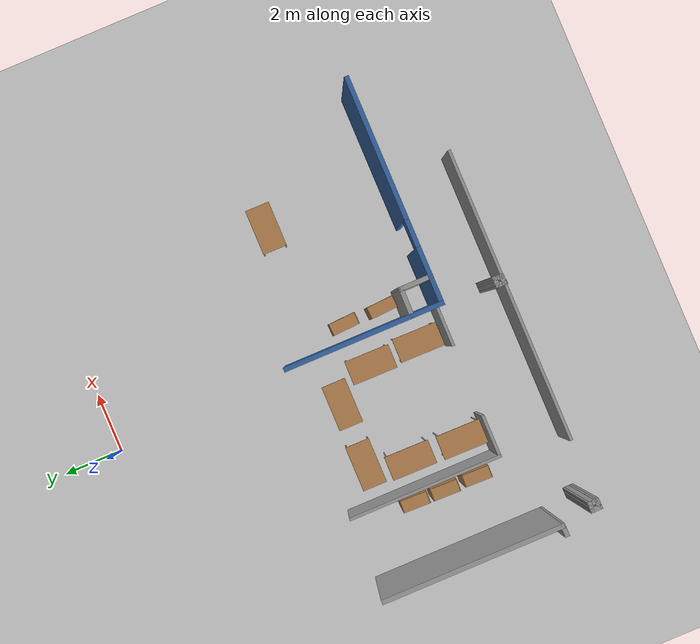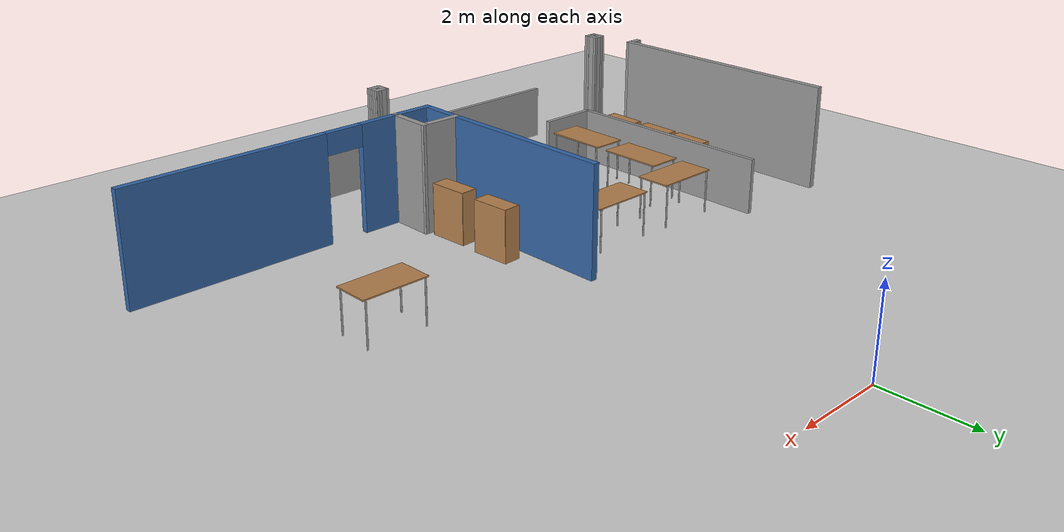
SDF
<sdf version="1.7">
 <world name="default">
  <model name="ground_plane">
   <static>1</static>
   <link name="link">
    <collision name="collision">
     <geometry><plane><normal>0 0 1</normal><size>100 100</size></plane></geometry>
     <surface>
      <contact><collide_bitmask>65535</collide_bitmask></contact>
      <friction><ode><mu>100</mu><mu2>50</mu2></ode></friction>
     </surface>
    </collision>
    <visual name="visual">
     <cast_shadows>0</cast_shadows>
     <geometry><plane><normal>0 0 1</normal><size>100 100</size></plane></geometry>
     <material>
      <script><uri>file://media/materials/scripts/gazebo.material</uri><name>Gazebo/Grey</name></script>
     </material>
    </visual>
   </link>
  </model>
  <model name="XXXXX_office_centered">
   <pose>8.46852 -9.33941 0 0 -0 0</pose>
   <link name="Wall_100">
    <collision name="Wall_100_Collision">
     <geometry><box><size>0.341623 0.15 2.5</size></box></geometry>
     <pose>0 0 1.25 0 -0 0</pose>
    </collision>
    <visual name="Wall_100_Visual">
     <pose>0 0 1.25 0 -0 0</pose>
     <geometry><box><size>0.341623 0.15 2.5</size></box></geometry>
     <material>
      <script><uri>file://media/materials/scripts/gazebo.material</uri><name>Gazebo/Grey</name></script>
      <ambient>1 1 1 1</ambient>
     </material>
     <meta><layer>0</layer></meta>
    </visual>
    <pose>-8.09905 -3.91466 0 0 -0 3.11175</pose>
   </link>
   <link name="Wall_132">
    <collision name="Wall_132_Collision">
     <geometry><box><size>5.2 0.1 1.3</size></box></geometry>
     <pose>0 0 0.65 0 -0 0</pose>
    </collision>
    <visual name="Wall_132_Visual">
     <pose>0 0 0.65 0 -0 0</pose>
     <geometry><box><size>5.2 0.1 1.3</size></box></geometry>
     <material>
      <script><uri>file://media/materials/scripts/gazebo.material</uri><name>Gazebo/Grey</name></script>
      <ambient>1 1 1 1</ambient>
     </material>
     <meta><layer>0</layer></meta>
    </visual>
    <pose>-13.2287 0.610146 0 0 -0 -1.5708</pose>
   </link>
   <link name="Wall_133">
    <collision name="Wall_133_Collision">
     <geometry><box><size>1.45 0.1 1.3</size></box></geometry>
     <pose>0 0 0.65 0 -0 0</pose>
    </collision>
    <visual name="Wall_133_Visual">
     <pose>0 0 0.65 0 -0 0</pose>
     <geometry><box><size>1.45 0.1 1.3</size></box></geometry>
     <material>
      <script><uri>file://media/materials/scripts/gazebo.material</uri><name>Gazebo/Grey</name></script>
      <ambient>1 1 1 1</ambient>
     </material>
     <meta><layer>0</layer></meta>
    </visual>
    <pose>-12.5537 -1.93985 0 0 -0 0</pose>
   </link>
   <link name="Wall_135">
    <collision name="Wall_135_Collision">
     <geometry><box><size>1.44963 0.1 1.3</size></box></geometry>
     <pose>0 0 0.65 0 -0 0</pose>
    </collision>
    <visual name="Wall_135_Visual">
     <pose>0 0 0.65 0 -0 0</pose>
     <geometry><box><size>1.44963 0.1 1.3</size></box></geometry>
     <material>
      <script><uri>file://media/materials/scripts/gazebo.material</uri><name>Gazebo/Grey</name></script>
      <ambient>1 1 1 1</ambient>
     </material>
     <meta><layer>0</layer></meta>
    </visual>
    <pose>-8.72873 -1.94485 0 0 -0 3.14159</pose>
   </link>
   <link name="Wall_167">
    <collision name="Wall_167_Collision">
     <geometry><box><size>9.95 0.1 1.3</size></box></geometry>
     <pose>0 0 0.65 0 -0 0</pose>
    </collision>
    <visual name="Wall_167_Visual">
     <pose>0 0 0.65 0 -0 0</pose>
     <geometry><box><size>9.95 0.1 1.3</size></box></geometry>
     <material>
      <script><uri>file://media/materials/scripts/gazebo.material</uri><name>Gazebo/Grey</name></script>
      <ambient>1 1 1 1</ambient>
     </material>
     <meta><layer>0</layer></meta>
    </visual>
    <pose>-8.67673 -4.21685 0 0 -0 3.14159</pose>
   </link>
   <link name="Wall_34">
    <collision name="Wall_34_Collision">
     <geometry><box><size>0.421671 0.15 2.5</size></box></geometry>
     <pose>0 0 1.25 0 -0 0</pose>
    </collision>
    <visual name="Wall_34_Visual">
     <pose>0 0 1.25 0 -0 0</pose>
     <geometry><box><size>0.421671 0.15 2.5</size></box></geometry>
     <material>
      <script><uri>file://media/materials/scripts/gazebo.material</uri><name>Gazebo/Grey</name></script>
      <ambient>1 1 1 1</ambient>
     </material>
     <meta><layer>0</layer></meta>
    </visual>
    <pose>-15.7892 -2.69755 0 0 -0 0.019104</pose>
   </link>
   <link name="Wall_35">
    <collision name="Wall_35_Collision">
     <geometry><box><size>6 0.15 2.5</size></box></geometry>
     <pose>0 0 1.25 0 -0 0</pose>
    </collision>
    <visual name="Wall_35_Visual">
     <pose>0 0 1.25 0 -0 0</pose>
     <geometry><box><size>6 0.15 2.5</size></box></geometry>
     <material>
      <script><uri>file://media/materials/scripts/gazebo.material</uri><name>Gazebo/Grey</name></script>
      <ambient>1 1 1 1</ambient>
     </material>
     <meta><layer>0</layer></meta>
    </visual>
    <pose>-15.6534 0.230043 0 0 -0 1.5708</pose>
   </link>
   <link name="Wall_41">
    <collision name="Wall_41_Collision">
     <geometry><box><size>5.25 0.15 2.5</size></box></geometry>
     <pose>0 0 1.25 0 -0 0</pose>
    </collision>
    <visual name="Wall_41_Visual">
     <pose>0 0 1.25 0 -0 0</pose>
     <geometry><box><size>5.25 0.15 2.5</size></box></geometry>
     <material>
      <script><uri>file://media/materials/scripts/gazebo.material</uri><name>Gazebo/Grey</name></script>
      <ambient>0.203922 0.396078 0.643137 1</ambient>
     </material>
     <meta><layer>0</layer></meta>
    </visual>
    <pose>-8.05354 0.605094 0 0 -0 -1.57087</pose>
   </link>
   <link name="Wall_42">
    <pose>-4.37854 -1.94491 0 0 -0 -1.4e-05</pose>
    <visual name="Wall_42_Visual_0">
     <pose>-2.79066 0 1.25 0 -0 0</pose>
     <geometry><box><size>1.91868 0.15 2.5</size></box></geometry>
     <material>
      <script><uri>file://media/materials/scripts/gazebo.material</uri><name>Gazebo/Grey</name></script>
      <ambient>0.203922 0.396078 0.643137 1</ambient>
     </material>
     <meta><layer>0</layer></meta>
    </visual>
    <collision name="Wall_42_Collision_0">
     <geometry><box><size>1.91868 0.15 2.5</size></box></geometry>
     <pose>-2.79066 0 1.25 0 -0 0</pose>
    </collision>
    <visual name="Wall_42_Visual_1">
     <pose>1.40934 0 1.25 0 -0 0</pose>
     <geometry><box><size>4.68131 0.15 2.5</size></box></geometry>
     <material>
      <script><uri>file://media/materials/scripts/gazebo.material</uri><name>Gazebo/Grey</name></script>
      <ambient>0.203922 0.396078 0.643137 1</ambient>
     </material>
     <meta><layer>0</layer></meta>
    </visual>
    <collision name="Wall_42_Collision_1">
     <geometry><box><size>4.68131 0.15 2.5</size></box></geometry>
     <pose>1.40934 0 1.25 0 -0 0</pose>
    </collision>
    <visual name="Wall_42_Visual_2">
     <pose>-1.38132 0 2.25 0 -0 0</pose>
     <geometry><box><size>0.9 0.15 0.5</size></box></geometry>
     <material>
      <script><uri>file://media/materials/scripts/gazebo.material</uri><name>Gazebo/Grey</name></script>
      <ambient>0.203922 0.396078 0.643137 1</ambient>
     </material>
     <meta><layer>0</layer></meta>
    </visual>
    <collision name="Wall_42_Collision_2">
     <geometry><box><size>0.9 0.15 0.5</size></box></geometry>
     <pose>-1.38132 0 2.25 0 -0 0</pose>
    </collision>
   </link>
   <link name="Wall_51">
    <collision name="Wall_51_Collision">
     <geometry><box><size>1.12149 0.15 2.5</size></box></geometry>
     <pose>0 0 1.25 0 -0 0</pose>
    </collision>
    <visual name="Wall_51_Visual">
     <pose>0 0 1.25 0 -0 0</pose>
     <geometry><box><size>1.12149 0.15 2.5</size></box></geometry>
     <material>
      <script><uri>file://media/materials/scripts/gazebo.material</uri><name>Gazebo/Grey</name></script>
      <ambient>1 1 1 1</ambient>
     </material>
     <meta><layer>0</layer></meta>
    </visual>
    <pose>-7.1714 -1.46267 0 0 -0 1.5708</pose>
   </link>
   <link name="Wall_52">
    <collision name="Wall_52_Collision">
     <geometry><box><size>1.01742 0.15 2.5</size></box></geometry>
     <pose>0 0 1.25 0 -0 0</pose>
    </collision>
    <visual name="Wall_52_Visual">
     <pose>0 0 1.25 0 -0 0</pose>
     <geometry><box><size>1.01742 0.15 2.5</size></box></geometry>
     <material>
      <script><uri>file://media/materials/scripts/gazebo.material</uri><name>Gazebo/Grey</name></script>
      <ambient>1 1 1 1</ambient>
     </material>
     <meta><layer>0</layer></meta>
    </visual>
    <pose>-7.6051 -0.971145 0 0 -0 3.12826</pose>
   </link>
   <link name="Wall_92">
    <collision name="Wall_92_Collision">
     <geometry><box><size>0.382989 0.15 2.5</size></box></geometry>
     <pose>0 0 1.25 0 -0 0</pose>
    </collision>
    <visual name="Wall_92_Visual">
     <pose>0 0 1.25 0 -0 0</pose>
     <geometry><box><size>0.382989 0.15 2.5</size></box></geometry>
     <material>
      <script><uri>file://media/materials/scripts/gazebo.material</uri><name>Gazebo/Grey</name></script>
      <ambient>1 1 1 1</ambient>
     </material>
     <meta><layer>0</layer></meta>
    </visual>
    <pose>-15.559 -3.82104 0 0 -0 1.58307</pose>
   </link>
   <link name="Wall_93">
    <collision name="Wall_93_Collision">
     <geometry><box><size>0.358695 0.15 2.5</size></box></geometry>
     <pose>0 0 1.25 0 -0 0</pose>
    </collision>
    <visual name="Wall_93_Visual">
     <pose>0 0 1.25 0 -0 0</pose>
     <geometry><box><size>0.358695 0.15 2.5</size></box></geometry>
     <material>
      <script><uri>file://media/materials/scripts/gazebo.material</uri><name>Gazebo/Grey</name></script>
      <ambient>1 1 1 1</ambient>
     </material>
     <meta><layer>0</layer></meta>
    </visual>
    <pose>-15.4561 -3.70383 0 0 -0 0.006849</pose>
   </link>
   <link name="Wall_94">
    <collision name="Wall_94_Collision">
     <geometry><box><size>0.37729 0.15 2.5</size></box></geometry>
     <pose>0 0 1.25 0 -0 0</pose>
    </collision>
    <visual name="Wall_94_Visual">
     <pose>0 0 1.25 0 -0 0</pose>
     <geometry><box><size>0.37729 0.15 2.5</size></box></geometry>
     <material>
      <script><uri>file://media/materials/scripts/gazebo.material</uri><name>Gazebo/Grey</name></script>
      <ambient>1 1 1 1</ambient>
     </material>
     <meta><layer>0</layer></meta>
    </visual>
    <pose>-15.3503 -3.81675 0 0 -0 -1.55822</pose>
   </link>
   <link name="Wall_95">
    <collision name="Wall_95_Collision">
     <geometry><box><size>0.341585 0.15 2.5</size></box></geometry>
     <pose>0 0 1.25 0 -0 0</pose>
    </collision>
    <visual name="Wall_95_Visual">
     <pose>0 0 1.25 0 -0 0</pose>
     <geometry><box><size>0.341585 0.15 2.5</size></box></geometry>
     <material>
      <script><uri>file://media/materials/scripts/gazebo.material</uri><name>Gazebo/Grey</name></script>
      <ambient>1 1 1 1</ambient>
     </material>
     <meta><layer>0</layer></meta>
    </visual>
    <pose>-15.4446 -3.92824 0 0 -0 3.11921</pose>
   </link>
   <link name="Wall_97">
    <collision name="Wall_97_Collision">
     <geometry><box><size>0.380131 0.15 2.5</size></box></geometry>
     <pose>0 0 1.25 0 -0 0</pose>
    </collision>
    <visual name="Wall_97_Visual">
     <pose>0 0 1.25 0 -0 0</pose>
     <geometry><box><size>0.380131 0.15 2.5</size></box></geometry>
     <material>
      <script><uri>file://media/materials/scripts/gazebo.material</uri><name>Gazebo/Grey</name></script>
      <ambient>1 1 1 1</ambient>
     </material>
     <meta><layer>0</layer></meta>
    </visual>
    <pose>-8.21054 -3.81818 0 0 -0 1.5708</pose>
   </link>
   <link name="Wall_98">
    <collision name="Wall_98_Collision">
     <geometry><box><size>0.361568 0.15 2.5</size></box></geometry>
     <pose>0 0 1.25 0 -0 0</pose>
    </collision>
    <visual name="Wall_98_Visual">
     <pose>0 0 1.25 0 -0 0</pose>
     <geometry><box><size>0.361568 0.15 2.5</size></box></geometry>
     <material>
      <script><uri>file://media/materials/scripts/gazebo.material</uri><name>Gazebo/Grey</name></script>
      <ambient>1 1 1 1</ambient>
     </material>
     <meta><layer>0</layer></meta>
    </visual>
    <pose>-8.10476 -3.70168 0 0 -0 0.013513</pose>
   </link>
   <link name="Wall_99">
    <collision name="Wall_99_Collision">
     <geometry><box><size>0.367384 0.15 2.5</size></box></geometry>
     <pose>0 0 1.25 0 -0 0</pose>
    </collision>
    <visual name="Wall_99_Visual">
     <pose>0 0 1.25 0 -0 0</pose>
     <geometry><box><size>0.367384 0.15 2.5</size></box></geometry>
     <material>
      <script><uri>file://media/materials/scripts/gazebo.material</uri><name>Gazebo/Grey</name></script>
      <ambient>1 1 1 1</ambient>
     </material>
     <meta><layer>0</layer></meta>
    </visual>
    <pose>-8.00113 -3.80889 0 0 -0 -1.59053</pose>
   </link>
   <static>1</static>
  </model>
  <model name="table_16">
   <static>1</static>
   <link name="link">
    <collision name="surface">
     <pose>0 0 1 0 -0 0</pose>
     <geometry><box><size>1.5 0.8 0.03</size></box></geometry>
     <surface><friction><ode><mu>0.6</mu><mu2>0.6</mu2></ode></friction></surface>
    </collision>
    <visual name="visual1">
     <pose>0 0 1 0 -0 0</pose>
     <geometry><box><size>1.5 0.8 0.03</size></box></geometry>
     <material>
      <script><uri>file://media/materials/scripts/gazebo.material</uri><name>Gazebo/Wood</name></script>
     </material>
    </visual>
    <collision name="collision_front_left_leg">
     <pose>0.68 0.38 0.5 0 -0 0</pose>
     <geometry><cylinder><radius>0.02</radius><length>1</length></cylinder></geometry>
    </collision>
    <visual name="visual_front_left_leg">
     <pose>0.68 0.38 0.5 0 -0 0</pose>
     <geometry><cylinder><radius>0.02</radius><length>1</length></cylinder></geometry>
     <material>
      <script><uri>file://media/materials/scripts/gazebo.material</uri><name>Gazebo/Grey</name></script>
     </material>
    </visual>
    <collision name="collision_front_right_leg">
     <pose>0.68 -0.38 0.5 0 -0 0</pose>
     <geometry><cylinder><radius>0.02</radius><length>1</length></cylinder></geometry>
    </collision>
    <visual name="visual_front_right_leg">
     <pose>0.68 -0.38 0.5 0 -0 0</pose>
     <geometry><cylinder><radius>0.02</radius><length>1</length></cylinder></geometry>
     <material>
      <script><uri>file://media/materials/scripts/gazebo.material</uri><name>Gazebo/Grey</name></script>
     </material>
    </visual>
    <collision name="collision_back_right_leg">
     <pose>-0.68 -0.38 0.5 0 -0 0</pose>
     <geometry><cylinder><radius>0.02</radius><length>1</length></cylinder></geometry>
    </collision>
    <visual name="visual_back_right_leg">
     <pose>-0.68 -0.38 0.5 0 -0 0</pose>
     <geometry><cylinder><radius>0.02</radius><length>1</length></cylinder></geometry>
     <material>
      <script><uri>file://media/materials/scripts/gazebo.material</uri><name>Gazebo/Grey</name></script>
     </material>
    </visual>
    <collision name="collision_back_left_leg">
     <pose>-0.68 0.38 0.5 0 -0 0</pose>
     <geometry><cylinder><radius>0.02</radius><length>1</length></cylinder></geometry>
    </collision>
    <visual name="visual_back_left_leg">
     <pose>-0.68 0.38 0.5 0 -0 0</pose>
     <geometry><cylinder><radius>0.02</radius><length>1</length></cylinder></geometry>
     <material>
      <script><uri>file://media/materials/scripts/gazebo.material</uri><name>Gazebo/Grey</name></script>
     </material>
    </visual>
   </link>
   <pose>-3.41113 -7.2797 0 0 -0 0</pose>
  </model>
  <model name="table_17">
   <static>1</static>
   <link name="link">
    <collision name="surface">
     <pose>0 0 1 0 -0 0</pose>
     <geometry><box><size>1.5 0.8 0.03</size></box></geometry>
     <surface><friction><ode><mu>0.6</mu><mu2>0.6</mu2></ode></friction></surface>
    </collision>
    <visual name="visual1">
     <pose>0 0 1 0 -0 0</pose>
     <geometry><box><size>1.5 0.8 0.03</size></box></geometry>
     <material>
      <script><uri>file://media/materials/scripts/gazebo.material</uri><name>Gazebo/Wood</name></script>
     </material>
    </visual>
    <collision name="collision_front_left_leg">
     <pose>0.68 0.38 0.5 0 -0 0</pose>
     <geometry><cylinder><radius>0.02</radius><length>1</length></cylinder></geometry>
    </collision>
    <visual name="visual_front_left_leg">
     <pose>0.68 0.38 0.5 0 -0 0</pose>
     <geometry><cylinder><radius>0.02</radius><length>1</length></cylinder></geometry>
     <material>
      <script><uri>file://media/materials/scripts/gazebo.material</uri><name>Gazebo/Grey</name></script>
     </material>
    </visual>
    <collision name="collision_front_right_leg">
     <pose>0.68 -0.38 0.5 0 -0 0</pose>
     <geometry><cylinder><radius>0.02</radius><length>1</length></cylinder></geometry>
    </collision>
    <visual name="visual_front_right_leg">
     <pose>0.68 -0.38 0.5 0 -0 0</pose>
     <geometry><cylinder><radius>0.02</radius><length>1</length></cylinder></geometry>
     <material>
      <script><uri>file://media/materials/scripts/gazebo.material</uri><name>Gazebo/Grey</name></script>
     </material>
    </visual>
    <collision name="collision_back_right_leg">
     <pose>-0.68 -0.38 0.5 0 -0 0</pose>
     <geometry><cylinder><radius>0.02</radius><length>1</length></cylinder></geometry>
    </collision>
    <visual name="visual_back_right_leg">
     <pose>-0.68 -0.38 0.5 0 -0 0</pose>
     <geometry><cylinder><radius>0.02</radius><length>1</length></cylinder></geometry>
     <material>
      <script><uri>file://media/materials/scripts/gazebo.material</uri><name>Gazebo/Grey</name></script>
     </material>
    </visual>
    <collision name="collision_back_left_leg">
     <pose>-0.68 0.38 0.5 0 -0 0</pose>
     <geometry><cylinder><radius>0.02</radius><length>1</length></cylinder></geometry>
    </collision>
    <visual name="visual_back_left_leg">
     <pose>-0.68 0.38 0.5 0 -0 0</pose>
     <geometry><cylinder><radius>0.02</radius><length>1</length></cylinder></geometry>
     <material>
      <script><uri>file://media/materials/scripts/gazebo.material</uri><name>Gazebo/Grey</name></script>
     </material>
    </visual>
   </link>
   <pose>-1.34659 -7.32695 0 0 -0 0</pose>
  </model>
  <model name="table_21">
   <static>1</static>
   <link name="link">
    <collision name="surface">
     <pose>0 0 1 0 -0 0</pose>
     <geometry><box><size>1.5 0.8 0.03</size></box></geometry>
     <surface><friction><ode><mu>0.6</mu><mu2>0.6</mu2></ode></friction></surface>
    </collision>
    <visual name="visual1">
     <pose>0 0 1 0 -0 0</pose>
     <geometry><box><size>1.5 0.8 0.03</size></box></geometry>
     <material>
      <script><uri>file://media/materials/scripts/gazebo.material</uri><name>Gazebo/Wood</name></script>
     </material>
    </visual>
    <collision name="collision_front_left_leg">
     <pose>0.68 0.38 0.5 0 -0 0</pose>
     <geometry><cylinder><radius>0.02</radius><length>1</length></cylinder></geometry>
    </collision>
    <visual name="visual_front_left_leg">
     <pose>0.68 0.38 0.5 0 -0 0</pose>
     <geometry><cylinder><radius>0.02</radius><length>1</length></cylinder></geometry>
     <material>
      <script><uri>file://media/materials/scripts/gazebo.material</uri><name>Gazebo/Grey</name></script>
     </material>
    </visual>
    <collision name="collision_front_right_leg">
     <pose>0.68 -0.38 0.5 0 -0 0</pose>
     <geometry><cylinder><radius>0.02</radius><length>1</length></cylinder></geometry>
    </collision>
    <visual name="visual_front_right_leg">
     <pose>0.68 -0.38 0.5 0 -0 0</pose>
     <geometry><cylinder><radius>0.02</radius><length>1</length></cylinder></geometry>
     <material>
      <script><uri>file://media/materials/scripts/gazebo.material</uri><name>Gazebo/Grey</name></script>
     </material>
    </visual>
    <collision name="collision_back_right_leg">
     <pose>-0.68 -0.38 0.5 0 -0 0</pose>
     <geometry><cylinder><radius>0.02</radius><length>1</length></cylinder></geometry>
    </collision>
    <visual name="visual_back_right_leg">
     <pose>-0.68 -0.38 0.5 0 -0 0</pose>
     <geometry><cylinder><radius>0.02</radius><length>1</length></cylinder></geometry>
     <material>
      <script><uri>file://media/materials/scripts/gazebo.material</uri><name>Gazebo/Grey</name></script>
     </material>
    </visual>
    <collision name="collision_back_left_leg">
     <pose>-0.68 0.38 0.5 0 -0 0</pose>
     <geometry><cylinder><radius>0.02</radius><length>1</length></cylinder></geometry>
    </collision>
    <visual name="visual_back_left_leg">
     <pose>-0.68 0.38 0.5 0 -0 0</pose>
     <geometry><cylinder><radius>0.02</radius><length>1</length></cylinder></geometry>
     <material>
      <script><uri>file://media/materials/scripts/gazebo.material</uri><name>Gazebo/Grey</name></script>
     </material>
    </visual>
   </link>
   <pose>4.78093 -7.27118 0 0 -0 0</pose>
  </model>
  <model name="table_26">
   <static>1</static>
   <link name="link">
    <collision name="surface">
     <pose>0 0 1 0 -0 0</pose>
     <geometry><box><size>1.5 0.8 0.03</size></box></geometry>
     <surface><friction><ode><mu>0.6</mu><mu2>0.6</mu2></ode></friction></surface>
    </collision>
    <visual name="visual1">
     <pose>0 0 1 0 -0 0</pose>
     <geometry><box><size>1.5 0.8 0.03</size></box></geometry>
     <material>
      <script><uri>file://media/materials/scripts/gazebo.material</uri><name>Gazebo/Wood</name></script>
     </material>
    </visual>
    <collision name="collision_front_left_leg">
     <pose>0.68 0.38 0.5 0 -0 0</pose>
     <geometry><cylinder><radius>0.02</radius><length>1</length></cylinder></geometry>
    </collision>
    <visual name="visual_front_left_leg">
     <pose>0.68 0.38 0.5 0 -0 0</pose>
     <geometry><cylinder><radius>0.02</radius><length>1</length></cylinder></geometry>
     <material>
      <script><uri>file://media/materials/scripts/gazebo.material</uri><name>Gazebo/Grey</name></script>
     </material>
    </visual>
    <collision name="collision_front_right_leg">
     <pose>0.68 -0.38 0.5 0 -0 0</pose>
     <geometry><cylinder><radius>0.02</radius><length>1</length></cylinder></geometry>
    </collision>
    <visual name="visual_front_right_leg">
     <pose>0.68 -0.38 0.5 0 -0 0</pose>
     <geometry><cylinder><radius>0.02</radius><length>1</length></cylinder></geometry>
     <material>
      <script><uri>file://media/materials/scripts/gazebo.material</uri><name>Gazebo/Grey</name></script>
     </material>
    </visual>
    <collision name="collision_back_right_leg">
     <pose>-0.68 -0.38 0.5 0 -0 0</pose>
     <geometry><cylinder><radius>0.02</radius><length>1</length></cylinder></geometry>
    </collision>
    <visual name="visual_back_right_leg">
     <pose>-0.68 -0.38 0.5 0 -0 0</pose>
     <geometry><cylinder><radius>0.02</radius><length>1</length></cylinder></geometry>
     <material>
      <script><uri>file://media/materials/scripts/gazebo.material</uri><name>Gazebo/Grey</name></script>
     </material>
    </visual>
    <collision name="collision_back_left_leg">
     <pose>-0.68 0.38 0.5 0 -0 0</pose>
     <geometry><cylinder><radius>0.02</radius><length>1</length></cylinder></geometry>
    </collision>
    <visual name="visual_back_left_leg">
     <pose>-0.68 0.38 0.5 0 -0 0</pose>
     <geometry><cylinder><radius>0.02</radius><length>1</length></cylinder></geometry>
     <material>
      <script><uri>file://media/materials/scripts/gazebo.material</uri><name>Gazebo/Grey</name></script>
     </material>
    </visual>
   </link>
   <pose>-0.530167 -8.66431 0 0 0 -1.57974</pose>
  </model>
  <model name="table_26_clone">
   <static>1</static>
   <link name="link">
    <collision name="surface">
     <pose>0 0 1 0 -0 0</pose>
     <geometry><box><size>1.5 0.8 0.03</size></box></geometry>
     <surface><friction><ode><mu>0.6</mu><mu2>0.6</mu2></ode></friction></surface>
    </collision>
    <visual name="visual1">
     <pose>0 0 1 0 -0 0</pose>
     <geometry><box><size>1.5 0.8 0.03</size></box></geometry>
     <material>
      <script><uri>file://media/materials/scripts/gazebo.material</uri><name>Gazebo/Wood</name></script>
     </material>
    </visual>
    <collision name="collision_front_left_leg">
     <pose>0.68 0.38 0.5 0 -0 0</pose>
     <geometry><cylinder><radius>0.02</radius><length>1</length></cylinder></geometry>
    </collision>
    <visual name="visual_front_left_leg">
     <pose>0.68 0.38 0.5 0 -0 0</pose>
     <geometry><cylinder><radius>0.02</radius><length>1</length></cylinder></geometry>
     <material>
      <script><uri>file://media/materials/scripts/gazebo.material</uri><name>Gazebo/Grey</name></script>
     </material>
    </visual>
    <collision name="collision_front_right_leg">
     <pose>0.68 -0.38 0.5 0 -0 0</pose>
     <geometry><cylinder><radius>0.02</radius><length>1</length></cylinder></geometry>
    </collision>
    <visual name="visual_front_right_leg">
     <pose>0.68 -0.38 0.5 0 -0 0</pose>
     <geometry><cylinder><radius>0.02</radius><length>1</length></cylinder></geometry>
     <material>
      <script><uri>file://media/materials/scripts/gazebo.material</uri><name>Gazebo/Grey</name></script>
     </material>
    </visual>
    <collision name="collision_back_right_leg">
     <pose>-0.68 -0.38 0.5 0 -0 0</pose>
     <geometry><cylinder><radius>0.02</radius><length>1</length></cylinder></geometry>
    </collision>
    <visual name="visual_back_right_leg">
     <pose>-0.68 -0.38 0.5 0 -0 0</pose>
     <geometry><cylinder><radius>0.02</radius><length>1</length></cylinder></geometry>
     <material>
      <script><uri>file://media/materials/scripts/gazebo.material</uri><name>Gazebo/Grey</name></script>
     </material>
    </visual>
    <collision name="collision_back_left_leg">
     <pose>-0.68 0.38 0.5 0 -0 0</pose>
     <geometry><cylinder><radius>0.02</radius><length>1</length></cylinder></geometry>
    </collision>
    <visual name="visual_back_left_leg">
     <pose>-0.68 0.38 0.5 0 -0 0</pose>
     <geometry><cylinder><radius>0.02</radius><length>1</length></cylinder></geometry>
     <material>
      <script><uri>file://media/materials/scripts/gazebo.material</uri><name>Gazebo/Grey</name></script>
     </material>
    </visual>
   </link>
   <pose>-0.4624 -10.3376 0 0 0 -1.57974</pose>
  </model>
  <model name="table_26_clone_0">
   <static>1</static>
   <link name="link">
    <collision name="surface">
     <pose>0 0 1 0 -0 0</pose>
     <geometry><box><size>1.5 0.8 0.03</size></box></geometry>
     <surface><friction><ode><mu>0.6</mu><mu2>0.6</mu2></ode></friction></surface>
    </collision>
    <visual name="visual1">
     <pose>0 0 1 0 -0 0</pose>
     <geometry><box><size>1.5 0.8 0.03</size></box></geometry>
     <material>
      <script><uri>file://media/materials/scripts/gazebo.material</uri><name>Gazebo/Wood</name></script>
     </material>
    </visual>
    <collision name="collision_front_left_leg">
     <pose>0.68 0.38 0.5 0 -0 0</pose>
     <geometry><cylinder><radius>0.02</radius><length>1</length></cylinder></geometry>
    </collision>
    <visual name="visual_front_left_leg">
     <pose>0.68 0.38 0.5 0 -0 0</pose>
     <geometry><cylinder><radius>0.02</radius><length>1</length></cylinder></geometry>
     <material>
      <script><uri>file://media/materials/scripts/gazebo.material</uri><name>Gazebo/Grey</name></script>
     </material>
    </visual>
    <collision name="collision_front_right_leg">
     <pose>0.68 -0.38 0.5 0 -0 0</pose>
     <geometry><cylinder><radius>0.02</radius><length>1</length></cylinder></geometry>
    </collision>
    <visual name="visual_front_right_leg">
     <pose>0.68 -0.38 0.5 0 -0 0</pose>
     <geometry><cylinder><radius>0.02</radius><length>1</length></cylinder></geometry>
     <material>
      <script><uri>file://media/materials/scripts/gazebo.material</uri><name>Gazebo/Grey</name></script>
     </material>
    </visual>
    <collision name="collision_back_right_leg">
     <pose>-0.68 -0.38 0.5 0 -0 0</pose>
     <geometry><cylinder><radius>0.02</radius><length>1</length></cylinder></geometry>
    </collision>
    <visual name="visual_back_right_leg">
     <pose>-0.68 -0.38 0.5 0 -0 0</pose>
     <geometry><cylinder><radius>0.02</radius><length>1</length></cylinder></geometry>
     <material>
      <script><uri>file://media/materials/scripts/gazebo.material</uri><name>Gazebo/Grey</name></script>
     </material>
    </visual>
    <collision name="collision_back_left_leg">
     <pose>-0.68 0.38 0.5 0 -0 0</pose>
     <geometry><cylinder><radius>0.02</radius><length>1</length></cylinder></geometry>
    </collision>
    <visual name="visual_back_left_leg">
     <pose>-0.68 0.38 0.5 0 -0 0</pose>
     <geometry><cylinder><radius>0.02</radius><length>1</length></cylinder></geometry>
     <material>
      <script><uri>file://media/materials/scripts/gazebo.material</uri><name>Gazebo/Grey</name></script>
     </material>
    </visual>
   </link>
   <pose>-3.82855 -8.64751 0 0 0 -1.57974</pose>
  </model>
  <model name="table_26_clone_1">
   <static>1</static>
   <link name="link">
    <collision name="surface">
     <pose>0 0 1 0 -0 0</pose>
     <geometry><box><size>1.5 0.8 0.03</size></box></geometry>
     <surface><friction><ode><mu>0.6</mu><mu2>0.6</mu2></ode></friction></surface>
    </collision>
    <visual name="visual1">
     <pose>0 0 1 0 -0 0</pose>
     <geometry><box><size>1.5 0.8 0.03</size></box></geometry>
     <material>
      <script><uri>file://media/materials/scripts/gazebo.material</uri><name>Gazebo/Wood</name></script>
     </material>
    </visual>
    <collision name="collision_front_left_leg">
     <pose>0.68 0.38 0.5 0 -0 0</pose>
     <geometry><cylinder><radius>0.02</radius><length>1</length></cylinder></geometry>
    </collision>
    <visual name="visual_front_left_leg">
     <pose>0.68 0.38 0.5 0 -0 0</pose>
     <geometry><cylinder><radius>0.02</radius><length>1</length></cylinder></geometry>
     <material>
      <script><uri>file://media/materials/scripts/gazebo.material</uri><name>Gazebo/Grey</name></script>
     </material>
    </visual>
    <collision name="collision_front_right_leg">
     <pose>0.68 -0.38 0.5 0 -0 0</pose>
     <geometry><cylinder><radius>0.02</radius><length>1</length></cylinder></geometry>
    </collision>
    <visual name="visual_front_right_leg">
     <pose>0.68 -0.38 0.5 0 -0 0</pose>
     <geometry><cylinder><radius>0.02</radius><length>1</length></cylinder></geometry>
     <material>
      <script><uri>file://media/materials/scripts/gazebo.material</uri><name>Gazebo/Grey</name></script>
     </material>
    </visual>
    <collision name="collision_back_right_leg">
     <pose>-0.68 -0.38 0.5 0 -0 0</pose>
     <geometry><cylinder><radius>0.02</radius><length>1</length></cylinder></geometry>
    </collision>
    <visual name="visual_back_right_leg">
     <pose>-0.68 -0.38 0.5 0 -0 0</pose>
     <geometry><cylinder><radius>0.02</radius><length>1</length></cylinder></geometry>
     <material>
      <script><uri>file://media/materials/scripts/gazebo.material</uri><name>Gazebo/Grey</name></script>
     </material>
    </visual>
    <collision name="collision_back_left_leg">
     <pose>-0.68 0.38 0.5 0 -0 0</pose>
     <geometry><cylinder><radius>0.02</radius><length>1</length></cylinder></geometry>
    </collision>
    <visual name="visual_back_left_leg">
     <pose>-0.68 0.38 0.5 0 -0 0</pose>
     <geometry><cylinder><radius>0.02</radius><length>1</length></cylinder></geometry>
     <material>
      <script><uri>file://media/materials/scripts/gazebo.material</uri><name>Gazebo/Grey</name></script>
     </material>
    </visual>
   </link>
   <pose>-3.85752 -10.4144 0 0 0 -1.57974</pose>
  </model>
  <model name="bookshelf_2_clone">
   <static>1</static>
   <link name="link">
    <inertial><mass>1</mass></inertial>
    <collision name="collision_back">
     <pose>0 0.005 0.6 0 -0 0</pose>
     <geometry><box><size>0.9 0.01 1.2</size></box></geometry>
    </collision>
    <visual name="visual1">
     <pose>0 0.005 0.6 0 -0 0</pose>
     <geometry><box><size>0.9 0.01 1.2</size></box></geometry>
     <material>
      <script><uri>file://media/materials/scripts/gazebo.material</uri><name>Gazebo/Wood</name></script>
     </material>
    </visual>
    <collision name="left_side">
     <pose>0.45 -0.195 0.6 0 -0 0</pose>
     <geometry><box><size>0.02 0.4 1.2</size></box></geometry>
    </collision>
    <visual name="visual2">
     <pose>0.45 -0.195 0.6 0 -0 0</pose>
     <geometry><box><size>0.02 0.4 1.2</size></box></geometry>
     <material>
      <script><uri>file://media/materials/scripts/gazebo.material</uri><name>Gazebo/Wood</name></script>
     </material>
    </visual>
    <collision name="right_side">
     <pose>-0.45 -0.195 0.6 0 -0 0</pose>
     <geometry><box><size>0.02 0.4 1.2</size></box></geometry>
    </collision>
    <visual name="visual3">
     <pose>-0.45 -0.195 0.6 0 -0 0</pose>
     <geometry><box><size>0.02 0.4 1.2</size></box></geometry>
     <material>
      <script><uri>file://media/materials/scripts/gazebo.material</uri><name>Gazebo/Wood</name></script>
     </material>
    </visual>
    <collision name="bottom">
     <pose>0 -0.195 0.03 0 -0 0</pose>
     <geometry><box><size>0.88 0.4 0.06</size></box></geometry>
    </collision>
    <visual name="visual4">
     <pose>0 -0.195 0.03 0 -0 0</pose>
     <geometry><box><size>0.88 0.4 0.06</size></box></geometry>
     <material>
      <script><uri>file://media/materials/scripts/gazebo.material</uri><name>Gazebo/Wood</name></script>
     </material>
    </visual>
    <collision name="top">
     <pose>0 -0.195 1.19 0 -0 0</pose>
     <geometry><box><size>0.88 0.4 0.02</size></box></geometry>
    </collision>
    <visual name="visual5">
     <pose>0 -0.195 1.19 0 -0 0</pose>
     <geometry><box><size>0.88 0.4 0.02</size></box></geometry>
     <material>
      <script><uri>file://media/materials/scripts/gazebo.material</uri><name>Gazebo/Wood</name></script>
     </material>
    </visual>
    <collision name="low_shelf">
     <pose>0 -0.195 0.43 0 -0 0</pose>
     <geometry><box><size>0.88 0.4 0.02</size></box></geometry>
    </collision>
    <visual name="visual6">
     <pose>0 -0.195 0.43 0 -0 0</pose>
     <geometry><box><size>0.88 0.4 0.02</size></box></geometry>
     <material>
      <script><uri>file://media/materials/scripts/gazebo.material</uri><name>Gazebo/Wood</name></script>
     </material>
    </visual>
    <collision name="high_shelf">
     <pose>0 -0.195 0.8 0 -0 0</pose>
     <geometry><box><size>0.88 0.4 0.02</size></box></geometry>
    </collision>
    <visual name="visual7">
     <pose>0 -0.195 0.8 0 -0 0</pose>
     <geometry><box><size>0.88 0.4 0.02</size></box></geometry>
     <material>
      <script><uri>file://media/materials/scripts/gazebo.material</uri><name>Gazebo/Wood</name></script>
     </material>
    </visual>
   </link>
   <pose>-4.88311 -8.25828 0 0 0 -1.5972</pose>
  </model>
  <model name="bookshelf_2_clone_0">
   <static>1</static>
   <link name="link">
    <inertial><mass>1</mass></inertial>
    <collision name="collision_back">
     <pose>0 0.005 0.6 0 -0 0</pose>
     <geometry><box><size>0.9 0.01 1.2</size></box></geometry>
    </collision>
    <visual name="visual1">
     <pose>0 0.005 0.6 0 -0 0</pose>
     <geometry><box><size>0.9 0.01 1.2</size></box></geometry>
     <material>
      <script><uri>file://media/materials/scripts/gazebo.material</uri><name>Gazebo/Wood</name></script>
     </material>
    </visual>
    <collision name="left_side">
     <pose>0.45 -0.195 0.6 0 -0 0</pose>
     <geometry><box><size>0.02 0.4 1.2</size></box></geometry>
    </collision>
    <visual name="visual2">
     <pose>0.45 -0.195 0.6 0 -0 0</pose>
     <geometry><box><size>0.02 0.4 1.2</size></box></geometry>
     <material>
      <script><uri>file://media/materials/scripts/gazebo.material</uri><name>Gazebo/Wood</name></script>
     </material>
    </visual>
    <collision name="right_side">
     <pose>-0.45 -0.195 0.6 0 -0 0</pose>
     <geometry><box><size>0.02 0.4 1.2</size></box></geometry>
    </collision>
    <visual name="visual3">
     <pose>-0.45 -0.195 0.6 0 -0 0</pose>
     <geometry><box><size>0.02 0.4 1.2</size></box></geometry>
     <material>
      <script><uri>file://media/materials/scripts/gazebo.material</uri><name>Gazebo/Wood</name></script>
     </material>
    </visual>
    <collision name="bottom">
     <pose>0 -0.195 0.03 0 -0 0</pose>
     <geometry><box><size>0.88 0.4 0.06</size></box></geometry>
    </collision>
    <visual name="visual4">
     <pose>0 -0.195 0.03 0 -0 0</pose>
     <geometry><box><size>0.88 0.4 0.06</size></box></geometry>
     <material>
      <script><uri>file://media/materials/scripts/gazebo.material</uri><name>Gazebo/Wood</name></script>
     </material>
    </visual>
    <collision name="top">
     <pose>0 -0.195 1.19 0 -0 0</pose>
     <geometry><box><size>0.88 0.4 0.02</size></box></geometry>
    </collision>
    <visual name="visual5">
     <pose>0 -0.195 1.19 0 -0 0</pose>
     <geometry><box><size>0.88 0.4 0.02</size></box></geometry>
     <material>
      <script><uri>file://media/materials/scripts/gazebo.material</uri><name>Gazebo/Wood</name></script>
     </material>
    </visual>
    <collision name="low_shelf">
     <pose>0 -0.195 0.43 0 -0 0</pose>
     <geometry><box><size>0.88 0.4 0.02</size></box></geometry>
    </collision>
    <visual name="visual6">
     <pose>0 -0.195 0.43 0 -0 0</pose>
     <geometry><box><size>0.88 0.4 0.02</size></box></geometry>
     <material>
      <script><uri>file://media/materials/scripts/gazebo.material</uri><name>Gazebo/Wood</name></script>
     </material>
    </visual>
    <collision name="high_shelf">
     <pose>0 -0.195 0.8 0 -0 0</pose>
     <geometry><box><size>0.88 0.4 0.02</size></box></geometry>
    </collision>
    <visual name="visual7">
     <pose>0 -0.195 0.8 0 -0 0</pose>
     <geometry><box><size>0.88 0.4 0.02</size></box></geometry>
     <material>
      <script><uri>file://media/materials/scripts/gazebo.material</uri><name>Gazebo/Wood</name></script>
     </material>
    </visual>
   </link>
   <pose>-4.90439 -9.28531 0 0 0 -1.5972</pose>
  </model>
  <model name="bookshelf_2_clone_1">
   <static>1</static>
   <link name="link">
    <inertial><mass>1</mass></inertial>
    <collision name="collision_back">
     <pose>0 0.005 0.6 0 -0 0</pose>
     <geometry><box><size>0.9 0.01 1.2</size></box></geometry>
    </collision>
    <visual name="visual1">
     <pose>0 0.005 0.6 0 -0 0</pose>
     <geometry><box><size>0.9 0.01 1.2</size></box></geometry>
     <material>
      <script><uri>file://media/materials/scripts/gazebo.material</uri><name>Gazebo/Wood</name></script>
     </material>
    </visual>
    <collision name="left_side">
     <pose>0.45 -0.195 0.6 0 -0 0</pose>
     <geometry><box><size>0.02 0.4 1.2</size></box></geometry>
    </collision>
    <visual name="visual2">
     <pose>0.45 -0.195 0.6 0 -0 0</pose>
     <geometry><box><size>0.02 0.4 1.2</size></box></geometry>
     <material>
      <script><uri>file://media/materials/scripts/gazebo.material</uri><name>Gazebo/Wood</name></script>
     </material>
    </visual>
    <collision name="right_side">
     <pose>-0.45 -0.195 0.6 0 -0 0</pose>
     <geometry><box><size>0.02 0.4 1.2</size></box></geometry>
    </collision>
    <visual name="visual3">
     <pose>-0.45 -0.195 0.6 0 -0 0</pose>
     <geometry><box><size>0.02 0.4 1.2</size></box></geometry>
     <material>
      <script><uri>file://media/materials/scripts/gazebo.material</uri><name>Gazebo/Wood</name></script>
     </material>
    </visual>
    <collision name="bottom">
     <pose>0 -0.195 0.03 0 -0 0</pose>
     <geometry><box><size>0.88 0.4 0.06</size></box></geometry>
    </collision>
    <visual name="visual4">
     <pose>0 -0.195 0.03 0 -0 0</pose>
     <geometry><box><size>0.88 0.4 0.06</size></box></geometry>
     <material>
      <script><uri>file://media/materials/scripts/gazebo.material</uri><name>Gazebo/Wood</name></script>
     </material>
    </visual>
    <collision name="top">
     <pose>0 -0.195 1.19 0 -0 0</pose>
     <geometry><box><size>0.88 0.4 0.02</size></box></geometry>
    </collision>
    <visual name="visual5">
     <pose>0 -0.195 1.19 0 -0 0</pose>
     <geometry><box><size>0.88 0.4 0.02</size></box></geometry>
     <material>
      <script><uri>file://media/materials/scripts/gazebo.material</uri><name>Gazebo/Wood</name></script>
     </material>
    </visual>
    <collision name="low_shelf">
     <pose>0 -0.195 0.43 0 -0 0</pose>
     <geometry><box><size>0.88 0.4 0.02</size></box></geometry>
    </collision>
    <visual name="visual6">
     <pose>0 -0.195 0.43 0 -0 0</pose>
     <geometry><box><size>0.88 0.4 0.02</size></box></geometry>
     <material>
      <script><uri>file://media/materials/scripts/gazebo.material</uri><name>Gazebo/Wood</name></script>
     </material>
    </visual>
    <collision name="high_shelf">
     <pose>0 -0.195 0.8 0 -0 0</pose>
     <geometry><box><size>0.88 0.4 0.02</size></box></geometry>
    </collision>
    <visual name="visual7">
     <pose>0 -0.195 0.8 0 -0 0</pose>
     <geometry><box><size>0.88 0.4 0.02</size></box></geometry>
     <material>
      <script><uri>file://media/materials/scripts/gazebo.material</uri><name>Gazebo/Wood</name></script>
     </material>
    </visual>
   </link>
   <pose>-4.89189 -10.3828 0 0 0 -1.5972</pose>
  </model>
  <model name="bookshelf_9_clone_2">
   <static>1</static>
   <link name="link">
    <inertial><mass>1</mass></inertial>
    <collision name="collision_back">
     <pose>0 0.005 0.6 0 -0 0</pose>
     <geometry><box><size>0.9 0.01 1.2</size></box></geometry>
    </collision>
    <visual name="visual1">
     <pose>0 0.005 0.6 0 -0 0</pose>
     <geometry><box><size>0.9 0.01 1.2</size></box></geometry>
     <material>
      <script><uri>file://media/materials/scripts/gazebo.material</uri><name>Gazebo/Wood</name></script>
     </material>
    </visual>
    <collision name="left_side">
     <pose>0.45 -0.195 0.6 0 -0 0</pose>
     <geometry><box><size>0.02 0.4 1.2</size></box></geometry>
    </collision>
    <visual name="visual2">
     <pose>0.45 -0.195 0.6 0 -0 0</pose>
     <geometry><box><size>0.02 0.4 1.2</size></box></geometry>
     <material>
      <script><uri>file://media/materials/scripts/gazebo.material</uri><name>Gazebo/Wood</name></script>
     </material>
    </visual>
    <collision name="right_side">
     <pose>-0.45 -0.195 0.6 0 -0 0</pose>
     <geometry><box><size>0.02 0.4 1.2</size></box></geometry>
    </collision>
    <visual name="visual3">
     <pose>-0.45 -0.195 0.6 0 -0 0</pose>
     <geometry><box><size>0.02 0.4 1.2</size></box></geometry>
     <material>
      <script><uri>file://media/materials/scripts/gazebo.material</uri><name>Gazebo/Wood</name></script>
     </material>
    </visual>
    <collision name="bottom">
     <pose>0 -0.195 0.03 0 -0 0</pose>
     <geometry><box><size>0.88 0.4 0.06</size></box></geometry>
    </collision>
    <visual name="visual4">
     <pose>0 -0.195 0.03 0 -0 0</pose>
     <geometry><box><size>0.88 0.4 0.06</size></box></geometry>
     <material>
      <script><uri>file://media/materials/scripts/gazebo.material</uri><name>Gazebo/Wood</name></script>
     </material>
    </visual>
    <collision name="top">
     <pose>0 -0.195 1.19 0 -0 0</pose>
     <geometry><box><size>0.88 0.4 0.02</size></box></geometry>
    </collision>
    <visual name="visual5">
     <pose>0 -0.195 1.19 0 -0 0</pose>
     <geometry><box><size>0.88 0.4 0.02</size></box></geometry>
     <material>
      <script><uri>file://media/materials/scripts/gazebo.material</uri><name>Gazebo/Wood</name></script>
     </material>
    </visual>
    <collision name="low_shelf">
     <pose>0 -0.195 0.43 0 -0 0</pose>
     <geometry><box><size>0.88 0.4 0.02</size></box></geometry>
    </collision>
    <visual name="visual6">
     <pose>0 -0.195 0.43 0 -0 0</pose>
     <geometry><box><size>0.88 0.4 0.02</size></box></geometry>
     <material>
      <script><uri>file://media/materials/scripts/gazebo.material</uri><name>Gazebo/Wood</name></script>
     </material>
    </visual>
    <collision name="high_shelf">
     <pose>0 -0.195 0.8 0 -0 0</pose>
     <geometry><box><size>0.88 0.4 0.02</size></box></geometry>
    </collision>
    <visual name="visual7">
     <pose>0 -0.195 0.8 0 -0 0</pose>
     <geometry><box><size>0.88 0.4 0.02</size></box></geometry>
     <material>
      <script><uri>file://media/materials/scripts/gazebo.material</uri><name>Gazebo/Wood</name></script>
     </material>
    </visual>
   </link>
   <pose>1.19196 -8.36018 0 0 0 -1.51799</pose>
  </model>
  <model name="bookshelf_9_clone_3">
   <static>1</static>
   <link name="link">
    <inertial><mass>1</mass></inertial>
    <collision name="collision_back">
     <pose>0 0.005 0.6 0 -0 0</pose>
     <geometry><box><size>0.9 0.01 1.2</size></box></geometry>
    </collision>
    <visual name="visual1">
     <pose>0 0.005 0.6 0 -0 0</pose>
     <geometry><box><size>0.9 0.01 1.2</size></box></geometry>
     <material>
      <script><uri>file://media/materials/scripts/gazebo.material</uri><name>Gazebo/Wood</name></script>
     </material>
    </visual>
    <collision name="left_side">
     <pose>0.45 -0.195 0.6 0 -0 0</pose>
     <geometry><box><size>0.02 0.4 1.2</size></box></geometry>
    </collision>
    <visual name="visual2">
     <pose>0.45 -0.195 0.6 0 -0 0</pose>
     <geometry><box><size>0.02 0.4 1.2</size></box></geometry>
     <material>
      <script><uri>file://media/materials/scripts/gazebo.material</uri><name>Gazebo/Wood</name></script>
     </material>
    </visual>
    <collision name="right_side">
     <pose>-0.45 -0.195 0.6 0 -0 0</pose>
     <geometry><box><size>0.02 0.4 1.2</size></box></geometry>
    </collision>
    <visual name="visual3">
     <pose>-0.45 -0.195 0.6 0 -0 0</pose>
     <geometry><box><size>0.02 0.4 1.2</size></box></geometry>
     <material>
      <script><uri>file://media/materials/scripts/gazebo.material</uri><name>Gazebo/Wood</name></script>
     </material>
    </visual>
    <collision name="bottom">
     <pose>0 -0.195 0.03 0 -0 0</pose>
     <geometry><box><size>0.88 0.4 0.06</size></box></geometry>
    </collision>
    <visual name="visual4">
     <pose>0 -0.195 0.03 0 -0 0</pose>
     <geometry><box><size>0.88 0.4 0.06</size></box></geometry>
     <material>
      <script><uri>file://media/materials/scripts/gazebo.material</uri><name>Gazebo/Wood</name></script>
     </material>
    </visual>
    <collision name="top">
     <pose>0 -0.195 1.19 0 -0 0</pose>
     <geometry><box><size>0.88 0.4 0.02</size></box></geometry>
    </collision>
    <visual name="visual5">
     <pose>0 -0.195 1.19 0 -0 0</pose>
     <geometry><box><size>0.88 0.4 0.02</size></box></geometry>
     <material>
      <script><uri>file://media/materials/scripts/gazebo.material</uri><name>Gazebo/Wood</name></script>
     </material>
    </visual>
    <collision name="low_shelf">
     <pose>0 -0.195 0.43 0 -0 0</pose>
     <geometry><box><size>0.88 0.4 0.02</size></box></geometry>
    </collision>
    <visual name="visual6">
     <pose>0 -0.195 0.43 0 -0 0</pose>
     <geometry><box><size>0.88 0.4 0.02</size></box></geometry>
     <material>
      <script><uri>file://media/materials/scripts/gazebo.material</uri><name>Gazebo/Wood</name></script>
     </material>
    </visual>
    <collision name="high_shelf">
     <pose>0 -0.195 0.8 0 -0 0</pose>
     <geometry><box><size>0.88 0.4 0.02</size></box></geometry>
    </collision>
    <visual name="visual7">
     <pose>0 -0.195 0.8 0 -0 0</pose>
     <geometry><box><size>0.88 0.4 0.02</size></box></geometry>
     <material>
      <script><uri>file://media/materials/scripts/gazebo.material</uri><name>Gazebo/Wood</name></script>
     </material>
    </visual>
   </link>
   <pose>1.2086 -9.67745 0 0 0 -1.51799</pose>
  </model>
 </world>
</sdf>
